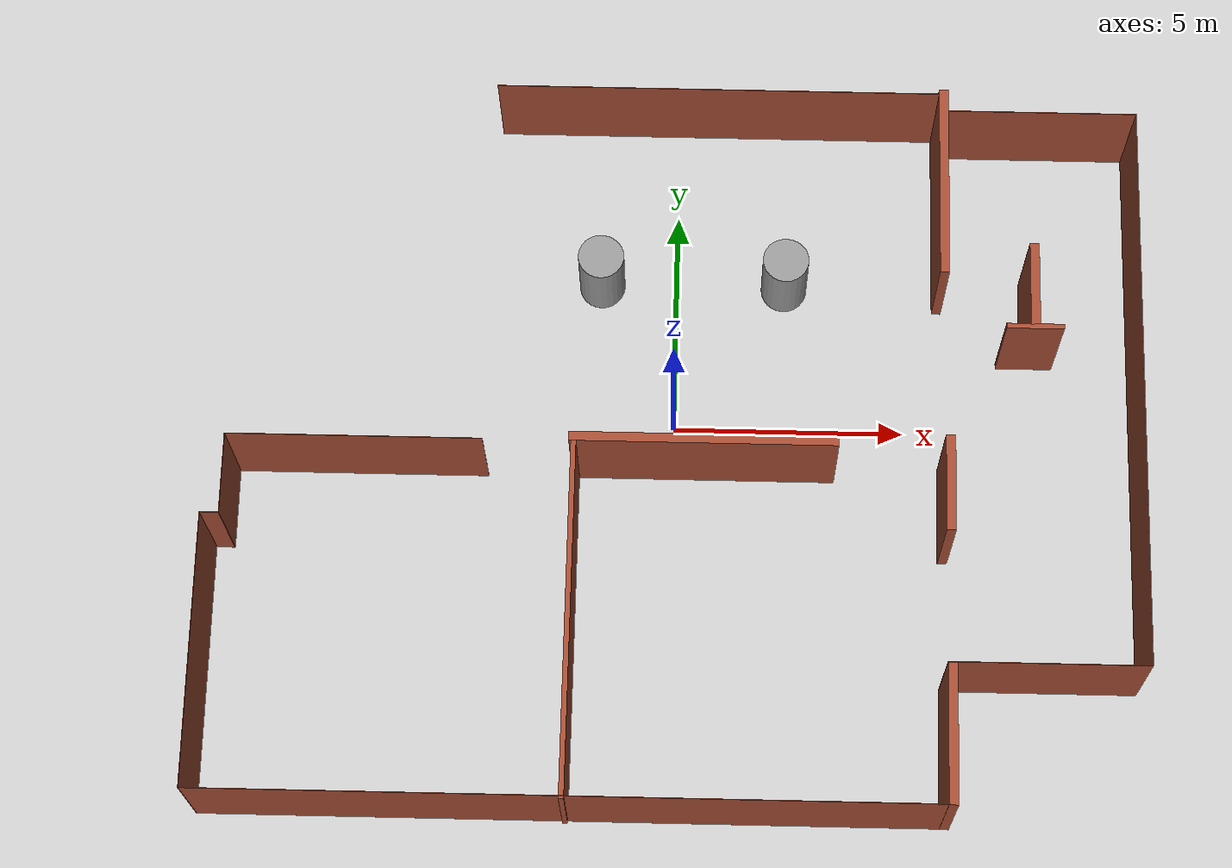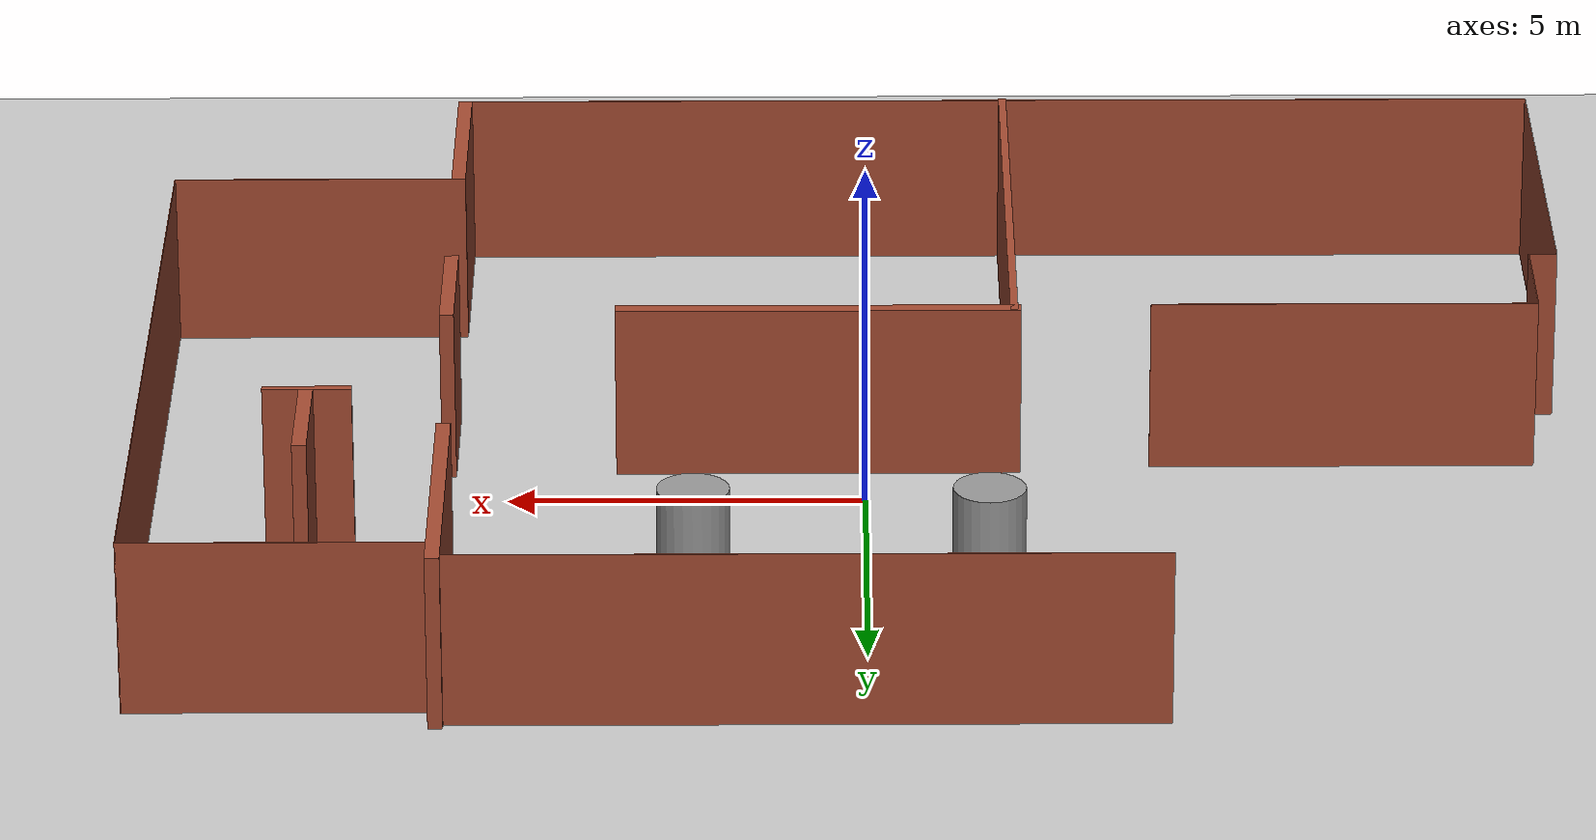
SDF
<sdf version="1.6">
 <world name="default">
  <model name="ground_plane">
   <static>1</static>
   <link name="link">
    <collision name="collision">
     <geometry><plane><normal>0 0 1</normal><size>100 100</size></plane></geometry>
     <surface><friction><ode><mu>100</mu><mu2>50</mu2></ode></friction></surface>
    </collision>
    <visual name="visual">
     <cast_shadows>0</cast_shadows>
     <geometry><plane><normal>0 0 1</normal><size>100 100</size></plane></geometry>
     <material>
      <script><uri>file://media/materials/scripts/gazebo.material</uri><name>Gazebo/Grey</name></script>
     </material>
    </visual>
   </link>
  </model>
  <model name="ANPL_Lab_Extended_0_0">
   <link name="Wall_165">
    <pose>-9.925 -4.975 0 0 -0 1.5708</pose>
    <visual name="Wall_165_Visual">
     <pose>0 0 1.25 0 -0 0</pose>
     <geometry><box><size>5.86 0.01 2.5</size></box></geometry>
     <material>
      <script><uri>file://media/materials/scripts/gazebo.material</uri><name>Gazebo/Bricks</name></script>
      <ambient>0.435294 0.796078 0.67451 1</ambient>
      <diffuse>1 1 1 1</diffuse>
      <specular>0.2 0.2 0.2 1</specular>
      <emissive>0 0 0 1</emissive>
     </material>
    </visual>
    <collision name="Wall_165_Collision">
     <pose>0 0 1.25 0 -0 0</pose>
     <geometry><box><size>5.86 0.01 2.5</size></box></geometry>
     <surface>
      <friction>
       <ode><mu>1</mu><mu2>1</mu2><fdir1>0 0 0</fdir1><slip1>0</slip1><slip2>0</slip2></ode>
       <torsional>
        <coefficient>1</coefficient>
        <patch_radius>0</patch_radius>
        <surface_radius>0</surface_radius>
        <use_patch_radius>1</use_patch_radius>
        <ode><slip>0</slip></ode>
       </torsional>
      </friction>
      <bounce><restitution_coefficient>0</restitution_coefficient><threshold>1e+06</threshold></bounce>
      <contact>
       <collide_without_contact>0</collide_without_contact>
       <collide_without_contact_bitmask>1</collide_without_contact_bitmask>
       <collide_bitmask>1</collide_bitmask>
       <ode>
        <soft_cfm>0</soft_cfm>
        <soft_erp>0.2</soft_erp>
        <kp>1e+13</kp>
        <kd>1</kd>
        <max_vel>0.01</max_vel>
        <min_depth>0</min_depth>
       </ode>
       <bullet>
        <split_impulse>1</split_impulse>
        <split_impulse_penetration_threshold>-0.01</split_impulse_penetration_threshold>
        <soft_cfm>0</soft_cfm>
        <soft_erp>0.2</soft_erp>
        <kp>1e+13</kp>
        <kd>1</kd>
       </bullet>
      </contact>
     </surface>
    </collision>
   </link>
   <link name="Wall_167">
    <pose>-9.725 -2.05 0 0 -0 0</pose>
    <visual name="Wall_167_Visual">
     <pose>0 0 1.25 0 -0 0</pose>
     <geometry><box><size>0.41 0.01 2.5</size></box></geometry>
     <material>
      <script><uri>file://media/materials/scripts/gazebo.material</uri><name>Gazebo/Bricks</name></script>
      <ambient>0.435294 0.796078 0.67451 1</ambient>
      <diffuse>1 1 1 1</diffuse>
      <specular>0.2 0.2 0.2 1</specular>
      <emissive>0 0 0 1</emissive>
     </material>
    </visual>
    <collision name="Wall_167_Collision">
     <pose>0 0 1.25 0 -0 0</pose>
     <geometry><box><size>0.41 0.01 2.5</size></box></geometry>
     <surface>
      <friction>
       <ode><mu>1</mu><mu2>1</mu2><fdir1>0 0 0</fdir1><slip1>0</slip1><slip2>0</slip2></ode>
       <torsional>
        <coefficient>1</coefficient>
        <patch_radius>0</patch_radius>
        <surface_radius>0</surface_radius>
        <use_patch_radius>1</use_patch_radius>
        <ode><slip>0</slip></ode>
       </torsional>
      </friction>
      <bounce><restitution_coefficient>0</restitution_coefficient><threshold>1e+06</threshold></bounce>
      <contact>
       <collide_without_contact>0</collide_without_contact>
       <collide_without_contact_bitmask>1</collide_without_contact_bitmask>
       <collide_bitmask>1</collide_bitmask>
       <ode>
        <soft_cfm>0</soft_cfm>
        <soft_erp>0.2</soft_erp>
        <kp>1e+13</kp>
        <kd>1</kd>
        <max_vel>0.01</max_vel>
        <min_depth>0</min_depth>
       </ode>
       <bullet>
        <split_impulse>1</split_impulse>
        <split_impulse_penetration_threshold>-0.01</split_impulse_penetration_threshold>
        <soft_cfm>0</soft_cfm>
        <soft_erp>0.2</soft_erp>
        <kp>1e+13</kp>
        <kd>1</kd>
       </bullet>
      </contact>
     </surface>
    </collision>
   </link>
   <link name="Wall_169">
    <pose>-9.525 -1.175 0 0 -0 1.5708</pose>
    <visual name="Wall_169_Visual">
     <pose>0 0 1.25 0 -0 0</pose>
     <geometry><box><size>1.76 0.01 2.5</size></box></geometry>
     <material>
      <script><uri>file://media/materials/scripts/gazebo.material</uri><name>Gazebo/Bricks</name></script>
      <ambient>0.435294 0.796078 0.67451 1</ambient>
      <diffuse>1 1 1 1</diffuse>
      <specular>0.2 0.2 0.2 1</specular>
      <emissive>0 0 0 1</emissive>
     </material>
    </visual>
    <collision name="Wall_169_Collision">
     <pose>0 0 1.25 0 -0 0</pose>
     <geometry><box><size>1.76 0.01 2.5</size></box></geometry>
     <surface>
      <friction>
       <ode><mu>1</mu><mu2>1</mu2><fdir1>0 0 0</fdir1><slip1>0</slip1><slip2>0</slip2></ode>
       <torsional>
        <coefficient>1</coefficient>
        <patch_radius>0</patch_radius>
        <surface_radius>0</surface_radius>
        <use_patch_radius>1</use_patch_radius>
        <ode><slip>0</slip></ode>
       </torsional>
      </friction>
      <bounce><restitution_coefficient>0</restitution_coefficient><threshold>1e+06</threshold></bounce>
      <contact>
       <collide_without_contact>0</collide_without_contact>
       <collide_without_contact_bitmask>1</collide_without_contact_bitmask>
       <collide_bitmask>1</collide_bitmask>
       <ode>
        <soft_cfm>0</soft_cfm>
        <soft_erp>0.2</soft_erp>
        <kp>1e+13</kp>
        <kd>1</kd>
        <max_vel>0.01</max_vel>
        <min_depth>0</min_depth>
       </ode>
       <bullet>
        <split_impulse>1</split_impulse>
        <split_impulse_penetration_threshold>-0.01</split_impulse_penetration_threshold>
        <soft_cfm>0</soft_cfm>
        <soft_erp>0.2</soft_erp>
        <kp>1e+13</kp>
        <kd>1</kd>
       </bullet>
      </contact>
     </surface>
    </collision>
   </link>
   <link name="Wall_171">
    <pose>-6.8125 -0.3 0 0 -0 0</pose>
    <visual name="Wall_171_Visual">
     <pose>0 0 1.25 0 -0 0</pose>
     <geometry><box><size>5.435 0.01 2.5</size></box></geometry>
     <material>
      <script><uri>file://media/materials/scripts/gazebo.material</uri><name>Gazebo/Bricks</name></script>
      <ambient>0.435294 0.796078 0.67451 1</ambient>
      <diffuse>1 1 1 1</diffuse>
      <specular>0.2 0.2 0.2 1</specular>
      <emissive>0 0 0 1</emissive>
     </material>
    </visual>
    <collision name="Wall_171_Collision">
     <pose>0 0 1.25 0 -0 0</pose>
     <geometry><box><size>5.435 0.01 2.5</size></box></geometry>
     <surface>
      <friction>
       <ode><mu>1</mu><mu2>1</mu2><fdir1>0 0 0</fdir1><slip1>0</slip1><slip2>0</slip2></ode>
       <torsional>
        <coefficient>1</coefficient>
        <patch_radius>0</patch_radius>
        <surface_radius>0</surface_radius>
        <use_patch_radius>1</use_patch_radius>
        <ode><slip>0</slip></ode>
       </torsional>
      </friction>
      <bounce><restitution_coefficient>0</restitution_coefficient><threshold>1e+06</threshold></bounce>
      <contact>
       <collide_without_contact>0</collide_without_contact>
       <collide_without_contact_bitmask>1</collide_without_contact_bitmask>
       <collide_bitmask>1</collide_bitmask>
       <ode>
        <soft_cfm>0</soft_cfm>
        <soft_erp>0.2</soft_erp>
        <kp>1e+13</kp>
        <kd>1</kd>
        <max_vel>0.01</max_vel>
        <min_depth>0</min_depth>
       </ode>
       <bullet>
        <split_impulse>1</split_impulse>
        <split_impulse_penetration_threshold>-0.01</split_impulse_penetration_threshold>
        <soft_cfm>0</soft_cfm>
        <soft_erp>0.2</soft_erp>
        <kp>1e+13</kp>
        <kd>1</kd>
       </bullet>
      </contact>
     </surface>
    </collision>
   </link>
   <link name="Wall_175">
    <pose>0.7875 7.9 0 0 -0 0</pose>
    <visual name="Wall_175_Visual">
     <pose>0 0 1.25 0 -0 0</pose>
     <geometry><box><size>9.785 0.01 2.5</size></box></geometry>
     <material>
      <script><uri>file://media/materials/scripts/gazebo.material</uri><name>Gazebo/Bricks</name></script>
      <ambient>0.435294 0.796078 0.67451 1</ambient>
      <diffuse>1 1 1 1</diffuse>
      <specular>0.2 0.2 0.2 1</specular>
      <emissive>0 0 0 1</emissive>
     </material>
    </visual>
    <collision name="Wall_175_Collision">
     <pose>0 0 1.25 0 -0 0</pose>
     <geometry><box><size>9.785 0.01 2.5</size></box></geometry>
     <surface>
      <friction>
       <ode><mu>1</mu><mu2>1</mu2><fdir1>0 0 0</fdir1><slip1>0</slip1><slip2>0</slip2></ode>
       <torsional>
        <coefficient>1</coefficient>
        <patch_radius>0</patch_radius>
        <surface_radius>0</surface_radius>
        <use_patch_radius>1</use_patch_radius>
        <ode><slip>0</slip></ode>
       </torsional>
      </friction>
      <bounce><restitution_coefficient>0</restitution_coefficient><threshold>1e+06</threshold></bounce>
      <contact>
       <collide_without_contact>0</collide_without_contact>
       <collide_without_contact_bitmask>1</collide_without_contact_bitmask>
       <collide_bitmask>1</collide_bitmask>
       <ode>
        <soft_cfm>0</soft_cfm>
        <soft_erp>0.2</soft_erp>
        <kp>1e+13</kp>
        <kd>1</kd>
        <max_vel>0.01</max_vel>
        <min_depth>0</min_depth>
       </ode>
       <bullet>
        <split_impulse>1</split_impulse>
        <split_impulse_penetration_threshold>-0.01</split_impulse_penetration_threshold>
        <soft_cfm>0</soft_cfm>
        <soft_erp>0.2</soft_erp>
        <kp>1e+13</kp>
        <kd>1</kd>
       </bullet>
      </contact>
     </surface>
    </collision>
   </link>
   <link name="Wall_177">
    <pose>5.675 5.85 0 0 0 -1.5708</pose>
    <visual name="Wall_177_Visual">
     <pose>0 0 1.25 0 -0 0</pose>
     <geometry><box><size>4.3 0.2 2.5</size></box></geometry>
     <material>
      <script><uri>file://media/materials/scripts/gazebo.material</uri><name>Gazebo/Bricks</name></script>
      <ambient>0.435294 0.796078 0.67451 1</ambient>
      <diffuse>1 1 1 1</diffuse>
      <specular>0.2 0.2 0.2 1</specular>
      <emissive>0 0 0 1</emissive>
     </material>
    </visual>
    <collision name="Wall_177_Collision">
     <pose>0 0 1.25 0 -0 0</pose>
     <geometry><box><size>4.3 0.2 2.5</size></box></geometry>
     <surface>
      <friction>
       <ode><mu>1</mu><mu2>1</mu2><fdir1>0 0 0</fdir1><slip1>0</slip1><slip2>0</slip2></ode>
       <torsional>
        <coefficient>1</coefficient>
        <patch_radius>0</patch_radius>
        <surface_radius>0</surface_radius>
        <use_patch_radius>1</use_patch_radius>
        <ode><slip>0</slip></ode>
       </torsional>
      </friction>
      <bounce><restitution_coefficient>0</restitution_coefficient><threshold>1e+06</threshold></bounce>
      <contact>
       <collide_without_contact>0</collide_without_contact>
       <collide_without_contact_bitmask>1</collide_without_contact_bitmask>
       <collide_bitmask>1</collide_bitmask>
       <ode>
        <soft_cfm>0</soft_cfm>
        <soft_erp>0.2</soft_erp>
        <kp>1e+13</kp>
        <kd>1</kd>
        <max_vel>0.01</max_vel>
        <min_depth>0</min_depth>
       </ode>
       <bullet>
        <split_impulse>1</split_impulse>
        <split_impulse_penetration_threshold>-0.01</split_impulse_penetration_threshold>
        <soft_cfm>0</soft_cfm>
        <soft_erp>0.2</soft_erp>
        <kp>1e+13</kp>
        <kd>1</kd>
       </bullet>
      </contact>
     </surface>
    </collision>
   </link>
   <link name="Wall_179">
    <pose>7.775 7.5 0 0 -0 0</pose>
    <visual name="Wall_179_Visual">
     <pose>0 0 1.25 0 -0 0</pose>
     <geometry><box><size>4.21 0.01 2.5</size></box></geometry>
     <material>
      <script><uri>file://media/materials/scripts/gazebo.material</uri><name>Gazebo/Bricks</name></script>
      <ambient>0.435294 0.796078 0.67451 1</ambient>
      <diffuse>1 1 1 1</diffuse>
      <specular>0.2 0.2 0.2 1</specular>
      <emissive>0 0 0 1</emissive>
     </material>
    </visual>
    <collision name="Wall_179_Collision">
     <pose>0 0 1.25 0 -0 0</pose>
     <geometry><box><size>4.21 0.01 2.5</size></box></geometry>
     <surface>
      <friction>
       <ode><mu>1</mu><mu2>1</mu2><fdir1>0 0 0</fdir1><slip1>0</slip1><slip2>0</slip2></ode>
       <torsional>
        <coefficient>1</coefficient>
        <patch_radius>0</patch_radius>
        <surface_radius>0</surface_radius>
        <use_patch_radius>1</use_patch_radius>
        <ode><slip>0</slip></ode>
       </torsional>
      </friction>
      <bounce><restitution_coefficient>0</restitution_coefficient><threshold>1e+06</threshold></bounce>
      <contact>
       <collide_without_contact>0</collide_without_contact>
       <collide_without_contact_bitmask>1</collide_without_contact_bitmask>
       <collide_bitmask>1</collide_bitmask>
       <ode>
        <soft_cfm>0</soft_cfm>
        <soft_erp>0.2</soft_erp>
        <kp>1e+13</kp>
        <kd>1</kd>
        <max_vel>0.01</max_vel>
        <min_depth>0</min_depth>
       </ode>
       <bullet>
        <split_impulse>1</split_impulse>
        <split_impulse_penetration_threshold>-0.01</split_impulse_penetration_threshold>
        <soft_cfm>0</soft_cfm>
        <soft_erp>0.2</soft_erp>
        <kp>1e+13</kp>
        <kd>1</kd>
       </bullet>
      </contact>
     </surface>
    </collision>
   </link>
   <link name="Wall_181">
    <pose>9.875 1.285 0 0 0 -1.5708</pose>
    <visual name="Wall_181_Visual">
     <pose>0 0 1.25 0 -0 0</pose>
     <geometry><box><size>12.44 0.01 2.5</size></box></geometry>
     <material>
      <script><uri>file://media/materials/scripts/gazebo.material</uri><name>Gazebo/Bricks</name></script>
      <ambient>0.435294 0.796078 0.67451 1</ambient>
      <diffuse>1 1 1 1</diffuse>
      <specular>0.2 0.2 0.2 1</specular>
      <emissive>0 0 0 1</emissive>
     </material>
    </visual>
    <collision name="Wall_181_Collision">
     <pose>0 0 1.25 0 -0 0</pose>
     <geometry><box><size>12.44 0.01 2.5</size></box></geometry>
     <surface>
      <friction>
       <ode><mu>1</mu><mu2>1</mu2><fdir1>0 0 0</fdir1><slip1>0</slip1><slip2>0</slip2></ode>
       <torsional>
        <coefficient>1</coefficient>
        <patch_radius>0</patch_radius>
        <surface_radius>0</surface_radius>
        <use_patch_radius>1</use_patch_radius>
        <ode><slip>0</slip></ode>
       </torsional>
      </friction>
      <bounce><restitution_coefficient>0</restitution_coefficient><threshold>1e+06</threshold></bounce>
      <contact>
       <collide_without_contact>0</collide_without_contact>
       <collide_without_contact_bitmask>1</collide_without_contact_bitmask>
       <collide_bitmask>1</collide_bitmask>
       <ode>
        <soft_cfm>0</soft_cfm>
        <soft_erp>0.2</soft_erp>
        <kp>1e+13</kp>
        <kd>1</kd>
        <max_vel>0.01</max_vel>
        <min_depth>0</min_depth>
       </ode>
       <bullet>
        <split_impulse>1</split_impulse>
        <split_impulse_penetration_threshold>-0.01</split_impulse_penetration_threshold>
        <soft_cfm>0</soft_cfm>
        <soft_erp>0.2</soft_erp>
        <kp>1e+13</kp>
        <kd>1</kd>
       </bullet>
      </contact>
     </surface>
    </collision>
   </link>
   <link name="Wall_183">
    <pose>7.6044 3.46126 0 0 -0 1.5708</pose>
    <inertial>
     <mass>1.43571</mass>
     <inertia><ixx>1.43571</ixx><ixy>0</ixy><ixz>0</ixz><iyy>2.19753</iyy><iyz>0</iyz><izz>2.19753</izz></inertia>
    </inertial>
    <visual name="Wall_183_Visual">
     <pose>0 0 1.25 0 -0 0</pose>
     <geometry><box><size>1.86641 0.2 2.5</size></box></geometry>
     <material>
      <script><uri>file://media/materials/scripts/gazebo.material</uri><name>Gazebo/Bricks</name></script>
      <ambient>0.435 0.796 0.675 1</ambient>
      <diffuse>1 1 1 1</diffuse>
      <specular>0.2 0.2 0.2 1</specular>
      <emissive>0 0 0 1</emissive>
      <shader type="vertex"><normal_map>__default__</normal_map></shader>
     </material>
    </visual>
    <collision name="Wall_183_Collision">
     <pose>0 0 1.25 0 -0 0</pose>
     <geometry><box><size>1.86641 0.2 2.5</size></box></geometry>
     <surface>
      <friction>
       <ode><mu>1</mu><mu2>1</mu2><fdir1>0 0 0</fdir1><slip1>0</slip1><slip2>0</slip2></ode>
       <torsional>
        <coefficient>1</coefficient>
        <patch_radius>0</patch_radius>
        <surface_radius>0</surface_radius>
        <use_patch_radius>1</use_patch_radius>
        <ode><slip>0</slip></ode>
       </torsional>
      </friction>
      <bounce><restitution_coefficient>0</restitution_coefficient><threshold>1e+06</threshold></bounce>
      <contact>
       <collide_without_contact>0</collide_without_contact>
       <collide_without_contact_bitmask>1</collide_without_contact_bitmask>
       <collide_bitmask>1</collide_bitmask>
       <ode>
        <soft_cfm>0</soft_cfm>
        <soft_erp>0.2</soft_erp>
        <kp>1e+13</kp>
        <kd>1</kd>
        <max_vel>0.01</max_vel>
        <min_depth>0</min_depth>
       </ode>
       <bullet>
        <split_impulse>1</split_impulse>
        <split_impulse_penetration_threshold>-0.01</split_impulse_penetration_threshold>
        <soft_cfm>0</soft_cfm>
        <soft_erp>0.2</soft_erp>
        <kp>1e+13</kp>
        <kd>1</kd>
       </bullet>
      </contact>
     </surface>
    </collision>
   </link>
   <link name="Wall_185">
    <pose>5.76868 -1.05 0 0 0 -1.5708</pose>
    <inertial>
     <mass>1</mass>
     <inertia><ixx>1</ixx><ixy>0</ixy><ixz>0</ixz><iyy>1</iyy><iyz>0</iyz><izz>1</izz></inertia>
    </inertial>
    <visual name="Wall_185_Visual">
     <pose>0 0 1.25 0 -0 0</pose>
     <geometry><box><size>2.1 0.2 2.5</size></box></geometry>
     <material>
      <script><uri>file://media/materials/scripts/gazebo.material</uri><name>Gazebo/Bricks</name></script>
      <ambient>0.435 0.796 0.675 1</ambient>
      <diffuse>1 1 1 1</diffuse>
      <specular>0.2 0.2 0.2 1</specular>
      <emissive>0 0 0 1</emissive>
      <shader type="vertex"><normal_map>__default__</normal_map></shader>
     </material>
    </visual>
    <collision name="Wall_185_Collision">
     <pose>0 0 1.25 0 -0 0</pose>
     <geometry><box><size>2.1 0.2 2.5</size></box></geometry>
     <surface>
      <friction>
       <ode><mu>1</mu><mu2>1</mu2><fdir1>0 0 0</fdir1><slip1>0</slip1><slip2>0</slip2></ode>
       <torsional>
        <coefficient>1</coefficient>
        <patch_radius>0</patch_radius>
        <surface_radius>0</surface_radius>
        <use_patch_radius>1</use_patch_radius>
        <ode><slip>0</slip></ode>
       </torsional>
      </friction>
      <bounce><restitution_coefficient>0</restitution_coefficient><threshold>1e+06</threshold></bounce>
      <contact>
       <collide_without_contact>0</collide_without_contact>
       <collide_without_contact_bitmask>1</collide_without_contact_bitmask>
       <collide_bitmask>1</collide_bitmask>
       <ode>
        <soft_cfm>0</soft_cfm>
        <soft_erp>0.2</soft_erp>
        <kp>1e+13</kp>
        <kd>1</kd>
        <max_vel>0.01</max_vel>
        <min_depth>0</min_depth>
       </ode>
       <bullet>
        <split_impulse>1</split_impulse>
        <split_impulse_penetration_threshold>-0.01</split_impulse_penetration_threshold>
        <soft_cfm>0</soft_cfm>
        <soft_erp>0.2</soft_erp>
        <kp>1e+13</kp>
        <kd>1</kd>
       </bullet>
      </contact>
     </surface>
    </collision>
   </link>
   <link name="Wall_187">
    <pose>7.59405 2.49 0 0 -0 0</pose>
    <inertial>
     <inertia><ixx>nan</ixx><ixy>0</ixy><ixz>0</ixz><iyy>nan</iyy><iyz>0</iyz><izz>nan</izz></inertia>
     <mass>0</mass>
    </inertial>
    <visual name="Wall_187_Visual">
     <pose>0 0 1.25 0 -0 0</pose>
     <geometry><box><size>1.23163 0.11 2.5</size></box></geometry>
     <material>
      <script><uri>file://media/materials/scripts/gazebo.material</uri><name>Gazebo/Bricks</name></script>
      <ambient>0.435294 0.796078 0.67451 1</ambient>
      <diffuse>1 1 1 1</diffuse>
      <specular>0.2 0.2 0.2 1</specular>
      <emissive>0 0 0 1</emissive>
     </material>
    </visual>
    <collision name="Wall_187_Collision">
     <pose>0 0 1.25 0 -0 0</pose>
     <geometry><box><size>1.23163 0.11 2.5</size></box></geometry>
     <surface>
      <friction>
       <ode><mu>1</mu><mu2>1</mu2><fdir1>0 0 0</fdir1><slip1>0</slip1><slip2>0</slip2></ode>
       <torsional>
        <coefficient>1</coefficient>
        <patch_radius>0</patch_radius>
        <surface_radius>0</surface_radius>
        <use_patch_radius>1</use_patch_radius>
        <ode><slip>0</slip></ode>
       </torsional>
      </friction>
      <bounce><restitution_coefficient>0</restitution_coefficient><threshold>1e+06</threshold></bounce>
      <contact>
       <collide_without_contact>0</collide_without_contact>
       <collide_without_contact_bitmask>1</collide_without_contact_bitmask>
       <collide_bitmask>1</collide_bitmask>
       <ode>
        <soft_cfm>0</soft_cfm>
        <soft_erp>0.2</soft_erp>
        <kp>1e+13</kp>
        <kd>1</kd>
        <max_vel>0.01</max_vel>
        <min_depth>0</min_depth>
       </ode>
       <bullet>
        <split_impulse>1</split_impulse>
        <split_impulse_penetration_threshold>-0.01</split_impulse_penetration_threshold>
        <soft_cfm>0</soft_cfm>
        <soft_erp>0.2</soft_erp>
        <kp>1e+13</kp>
        <kd>1</kd>
       </bullet>
      </contact>
     </surface>
    </collision>
   </link>
   <link name="Wall_201">
    <pose>7.775 -4.93 0 0 -0 3.14159</pose>
    <visual name="Wall_201_Visual">
     <pose>0 0 1.25 0 -0 0</pose>
     <geometry><box><size>4.21 0.01 2.5</size></box></geometry>
     <material>
      <script><uri>file://media/materials/scripts/gazebo.material</uri><name>Gazebo/Bricks</name></script>
      <ambient>0.435294 0.796078 0.67451 1</ambient>
      <diffuse>1 1 1 1</diffuse>
      <specular>0.2 0.2 0.2 1</specular>
      <emissive>0 0 0 1</emissive>
     </material>
    </visual>
    <collision name="Wall_201_Collision">
     <pose>0 0 1.25 0 -0 0</pose>
     <geometry><box><size>4.21 0.01 2.5</size></box></geometry>
     <surface>
      <friction>
       <ode><mu>1</mu><mu2>1</mu2><fdir1>0 0 0</fdir1><slip1>0</slip1><slip2>0</slip2></ode>
       <torsional>
        <coefficient>1</coefficient>
        <patch_radius>0</patch_radius>
        <surface_radius>0</surface_radius>
        <use_patch_radius>1</use_patch_radius>
        <ode><slip>0</slip></ode>
       </torsional>
      </friction>
      <bounce><restitution_coefficient>0</restitution_coefficient><threshold>1e+06</threshold></bounce>
      <contact>
       <collide_without_contact>0</collide_without_contact>
       <collide_without_contact_bitmask>1</collide_without_contact_bitmask>
       <collide_bitmask>1</collide_bitmask>
       <ode>
        <soft_cfm>0</soft_cfm>
        <soft_erp>0.2</soft_erp>
        <kp>1e+13</kp>
        <kd>1</kd>
        <max_vel>0.01</max_vel>
        <min_depth>0</min_depth>
       </ode>
       <bullet>
        <split_impulse>1</split_impulse>
        <split_impulse_penetration_threshold>-0.01</split_impulse_penetration_threshold>
        <soft_cfm>0</soft_cfm>
        <soft_erp>0.2</soft_erp>
        <kp>1e+13</kp>
        <kd>1</kd>
       </bullet>
      </contact>
     </surface>
    </collision>
   </link>
   <link name="Wall_203">
    <pose>5.76868 -6.42951 0 0 0 -1.5708</pose>
    <inertial>
     <inertia>
      <ixx>1.79769e+308</ixx>
      <ixy>0</ixy>
      <ixz>0</ixz>
      <iyy>1.79769e+308</iyy>
      <iyz>0</iyz>
      <izz>1.79769e+308</izz>
     </inertia>
     <mass>0</mass>
    </inertial>
    <visual name="Wall_203_Visual">
     <pose>0 0 1.25 0 -0 0</pose>
     <geometry><box><size>2.97075 0.2 2.5</size></box></geometry>
     <material>
      <script><uri>file://media/materials/scripts/gazebo.material</uri><name>Gazebo/Bricks</name></script>
      <ambient>0.435 0.796 0.675 1</ambient>
      <diffuse>1 1 1 1</diffuse>
      <specular>0.2 0.2 0.2 1</specular>
      <emissive>0 0 0 1</emissive>
      <shader type="vertex"><normal_map>__default__</normal_map></shader>
     </material>
    </visual>
    <collision name="Wall_203_Collision">
     <pose>0 0 1.25 0 -0 0</pose>
     <geometry><box><size>2.97075 0.2 2.5</size></box></geometry>
     <surface>
      <friction>
       <ode><mu>1</mu><mu2>1</mu2><fdir1>0 0 0</fdir1><slip1>0</slip1><slip2>0</slip2></ode>
       <torsional>
        <coefficient>1</coefficient>
        <patch_radius>0</patch_radius>
        <surface_radius>0</surface_radius>
        <use_patch_radius>1</use_patch_radius>
        <ode><slip>0</slip></ode>
       </torsional>
      </friction>
      <bounce><restitution_coefficient>0</restitution_coefficient><threshold>1e+06</threshold></bounce>
      <contact>
       <collide_without_contact>0</collide_without_contact>
       <collide_without_contact_bitmask>1</collide_without_contact_bitmask>
       <collide_bitmask>1</collide_bitmask>
       <ode>
        <soft_cfm>0</soft_cfm>
        <soft_erp>0.2</soft_erp>
        <kp>1e+13</kp>
        <kd>1</kd>
        <max_vel>0.01</max_vel>
        <min_depth>0</min_depth>
       </ode>
       <bullet>
        <split_impulse>1</split_impulse>
        <split_impulse_penetration_threshold>-0.01</split_impulse_penetration_threshold>
        <soft_cfm>0</soft_cfm>
        <soft_erp>0.2</soft_erp>
        <kp>1e+13</kp>
        <kd>1</kd>
       </bullet>
      </contact>
     </surface>
    </collision>
   </link>
   <link name="Wall_205">
    <pose>-2.125 -7.9 0 0 -0 3.14159</pose>
    <visual name="Wall_205_Visual">
     <pose>0 0 1.25 0 -0 0</pose>
     <geometry><box><size>15.61 0.01 2.5</size></box></geometry>
     <material>
      <script><uri>file://media/materials/scripts/gazebo.material</uri><name>Gazebo/Bricks</name></script>
      <ambient>0.435294 0.796078 0.67451 1</ambient>
      <diffuse>1 1 1 1</diffuse>
      <specular>0.2 0.2 0.2 1</specular>
      <emissive>0 0 0 1</emissive>
     </material>
    </visual>
    <collision name="Wall_205_Collision">
     <pose>0 0 1.25 0 -0 0</pose>
     <geometry><box><size>15.61 0.01 2.5</size></box></geometry>
     <surface>
      <friction>
       <ode><mu>1</mu><mu2>1</mu2><fdir1>0 0 0</fdir1><slip1>0</slip1><slip2>0</slip2></ode>
       <torsional>
        <coefficient>1</coefficient>
        <patch_radius>0</patch_radius>
        <surface_radius>0</surface_radius>
        <use_patch_radius>1</use_patch_radius>
        <ode><slip>0</slip></ode>
       </torsional>
      </friction>
      <bounce><restitution_coefficient>0</restitution_coefficient><threshold>1e+06</threshold></bounce>
      <contact>
       <collide_without_contact>0</collide_without_contact>
       <collide_without_contact_bitmask>1</collide_without_contact_bitmask>
       <collide_bitmask>1</collide_bitmask>
       <ode>
        <soft_cfm>0</soft_cfm>
        <soft_erp>0.2</soft_erp>
        <kp>1e+13</kp>
        <kd>1</kd>
        <max_vel>0.01</max_vel>
        <min_depth>0</min_depth>
       </ode>
       <bullet>
        <split_impulse>1</split_impulse>
        <split_impulse_penetration_threshold>-0.01</split_impulse_penetration_threshold>
        <soft_cfm>0</soft_cfm>
        <soft_erp>0.2</soft_erp>
        <kp>1e+13</kp>
        <kd>1</kd>
       </bullet>
      </contact>
     </surface>
    </collision>
   </link>
   <link name="Wall_207">
    <pose>-2.175 -4.05 0 0 -0 1.5708</pose>
    <visual name="Wall_207_Visual">
     <pose>0 0 1.25 0 -0 0</pose>
     <geometry><box><size>7.81 0.11 2.5</size></box></geometry>
     <material>
      <script><uri>file://media/materials/scripts/gazebo.material</uri><name>Gazebo/Bricks</name></script>
      <ambient>0.435294 0.796078 0.67451 1</ambient>
      <diffuse>1 1 1 1</diffuse>
      <specular>0.2 0.2 0.2 1</specular>
      <emissive>0 0 0 1</emissive>
     </material>
    </visual>
    <collision name="Wall_207_Collision">
     <pose>0 0 1.25 0 -0 0</pose>
     <geometry><box><size>7.81 0.11 2.5</size></box></geometry>
     <surface>
      <friction>
       <ode><mu>1</mu><mu2>1</mu2><fdir1>0 0 0</fdir1><slip1>0</slip1><slip2>0</slip2></ode>
       <torsional>
        <coefficient>1</coefficient>
        <patch_radius>0</patch_radius>
        <surface_radius>0</surface_radius>
        <use_patch_radius>1</use_patch_radius>
        <ode><slip>0</slip></ode>
       </torsional>
      </friction>
      <bounce><restitution_coefficient>0</restitution_coefficient><threshold>1e+06</threshold></bounce>
      <contact>
       <collide_without_contact>0</collide_without_contact>
       <collide_without_contact_bitmask>1</collide_without_contact_bitmask>
       <collide_bitmask>1</collide_bitmask>
       <ode>
        <soft_cfm>0</soft_cfm>
        <soft_erp>0.2</soft_erp>
        <kp>1e+13</kp>
        <kd>1</kd>
        <max_vel>0.01</max_vel>
        <min_depth>0</min_depth>
       </ode>
       <bullet>
        <split_impulse>1</split_impulse>
        <split_impulse_penetration_threshold>-0.01</split_impulse_penetration_threshold>
        <soft_cfm>0</soft_cfm>
        <soft_erp>0.2</soft_erp>
        <kp>1e+13</kp>
        <kd>1</kd>
       </bullet>
      </contact>
     </surface>
    </collision>
   </link>
   <link name="Wall_209">
    <pose>0.571 -0.2 0 0 -0 0</pose>
    <inertial>
     <mass>1</mass>
     <inertia><ixx>1</ixx><ixy>0</ixy><ixz>0</ixz><iyy>1</iyy><iyz>0</iyz><izz>1</izz></inertia>
    </inertial>
    <visual name="Wall_209_Visual">
     <pose>0 0 1.25 0 -0 0</pose>
     <geometry><box><size>5.692 0.2 2.5</size></box></geometry>
     <material>
      <script><uri>file://media/materials/scripts/gazebo.material</uri><name>Gazebo/Bricks</name></script>
      <ambient>0.435 0.796 0.675 1</ambient>
      <diffuse>1 1 1 1</diffuse>
      <specular>0.2 0.2 0.2 1</specular>
      <emissive>0 0 0 1</emissive>
      <shader type="vertex"><normal_map>__default__</normal_map></shader>
     </material>
    </visual>
    <collision name="Wall_209_Collision">
     <pose>0 0 1.25 0 -0 0</pose>
     <geometry><box><size>5.692 0.2 2.5</size></box></geometry>
     <surface>
      <friction>
       <ode><mu>1</mu><mu2>1</mu2><fdir1>0 0 0</fdir1><slip1>0</slip1><slip2>0</slip2></ode>
       <torsional>
        <coefficient>1</coefficient>
        <patch_radius>0</patch_radius>
        <surface_radius>0</surface_radius>
        <use_patch_radius>1</use_patch_radius>
        <ode><slip>0</slip></ode>
       </torsional>
      </friction>
      <bounce><restitution_coefficient>0</restitution_coefficient><threshold>1e+06</threshold></bounce>
      <contact>
       <collide_without_contact>0</collide_without_contact>
       <collide_without_contact_bitmask>1</collide_without_contact_bitmask>
       <collide_bitmask>1</collide_bitmask>
       <ode>
        <soft_cfm>0</soft_cfm>
        <soft_erp>0.2</soft_erp>
        <kp>1e+13</kp>
        <kd>1</kd>
        <max_vel>0.01</max_vel>
        <min_depth>0</min_depth>
       </ode>
       <bullet>
        <split_impulse>1</split_impulse>
        <split_impulse_penetration_threshold>-0.01</split_impulse_penetration_threshold>
        <soft_cfm>0</soft_cfm>
        <soft_erp>0.2</soft_erp>
        <kp>1e+13</kp>
        <kd>1</kd>
       </bullet>
      </contact>
     </surface>
    </collision>
   </link>
   <link name="link_0">
    <pose>2.28416 4.2 0.5 0 -0 0</pose>
    <inertial>
     <mass>1</mass>
     <inertia><ixx>0.145833</ixx><ixy>0</ixy><ixz>0</ixz><iyy>0.145833</iyy><iyz>0</iyz><izz>0.125</izz></inertia>
    </inertial>
    <visual name="visual">
     <geometry><cylinder><radius>0.5</radius><length>2.5</length></cylinder></geometry>
     <material>
      <lighting>1</lighting>
      <script><uri>file://media/materials/scripts/gazebo.material</uri><name>Gazebo/Grey</name></script>
      <ambient>0.3 0.3 0.3 1</ambient>
      <diffuse>0.7 0.7 0.7 1</diffuse>
      <specular>0.01 0.01 0.01 1</specular>
      <emissive>0 0 0 1</emissive>
      <shader type="vertex"><normal_map>__default__</normal_map></shader>
     </material>
    </visual>
    <collision name="collision">
     <geometry><cylinder><radius>0.5</radius><length>2.5</length></cylinder></geometry>
     <surface>
      <friction>
       <ode><mu>1</mu><mu2>1</mu2><fdir1>0 0 0</fdir1><slip1>0</slip1><slip2>0</slip2></ode>
       <torsional>
        <coefficient>1</coefficient>
        <patch_radius>0</patch_radius>
        <surface_radius>0</surface_radius>
        <use_patch_radius>1</use_patch_radius>
        <ode><slip>0</slip></ode>
       </torsional>
      </friction>
      <bounce><restitution_coefficient>0</restitution_coefficient><threshold>1e+06</threshold></bounce>
      <contact>
       <collide_without_contact>0</collide_without_contact>
       <collide_without_contact_bitmask>1</collide_without_contact_bitmask>
       <collide_bitmask>1</collide_bitmask>
       <ode>
        <soft_cfm>0</soft_cfm>
        <soft_erp>0.2</soft_erp>
        <kp>1e+13</kp>
        <kd>1</kd>
        <max_vel>0.01</max_vel>
        <min_depth>0</min_depth>
       </ode>
       <bullet>
        <split_impulse>1</split_impulse>
        <split_impulse_penetration_threshold>-0.01</split_impulse_penetration_threshold>
        <soft_cfm>0</soft_cfm>
        <soft_erp>0.2</soft_erp>
        <kp>1e+13</kp>
        <kd>1</kd>
       </bullet>
      </contact>
     </surface>
    </collision>
   </link>
   <link name="link_1">
    <pose>-1.74778 4.2 0.5 0 -0 0</pose>
    <inertial>
     <mass>1</mass>
     <inertia><ixx>0.145833</ixx><ixy>0</ixy><ixz>0</ixz><iyy>0.145833</iyy><iyz>0</iyz><izz>0.125</izz></inertia>
    </inertial>
    <visual name="visual">
     <geometry><cylinder><radius>0.5</radius><length>2.5</length></cylinder></geometry>
     <material>
      <lighting>1</lighting>
      <script><uri>file://media/materials/scripts/gazebo.material</uri><name>Gazebo/Grey</name></script>
      <ambient>0.3 0.3 0.3 1</ambient>
      <diffuse>0.7 0.7 0.7 1</diffuse>
      <specular>0.01 0.01 0.01 1</specular>
      <emissive>0 0 0 1</emissive>
      <shader type="vertex"><normal_map>__default__</normal_map></shader>
     </material>
    </visual>
    <collision name="collision">
     <geometry><cylinder><radius>0.5</radius><length>2.5</length></cylinder></geometry>
     <surface>
      <friction>
       <ode><mu>1</mu><mu2>1</mu2><fdir1>0 0 0</fdir1><slip1>0</slip1><slip2>0</slip2></ode>
       <torsional>
        <coefficient>1</coefficient>
        <patch_radius>0</patch_radius>
        <surface_radius>0</surface_radius>
        <use_patch_radius>1</use_patch_radius>
        <ode><slip>0</slip></ode>
       </torsional>
      </friction>
      <bounce><restitution_coefficient>0</restitution_coefficient><threshold>1e+06</threshold></bounce>
      <contact>
       <collide_without_contact>0</collide_without_contact>
       <collide_without_contact_bitmask>1</collide_without_contact_bitmask>
       <collide_bitmask>1</collide_bitmask>
       <ode>
        <soft_cfm>0</soft_cfm>
        <soft_erp>0.2</soft_erp>
        <kp>1e+13</kp>
        <kd>1</kd>
        <max_vel>0.01</max_vel>
        <min_depth>0</min_depth>
       </ode>
       <bullet>
        <split_impulse>1</split_impulse>
        <split_impulse_penetration_threshold>-0.01</split_impulse_penetration_threshold>
        <soft_cfm>0</soft_cfm>
        <soft_erp>0.2</soft_erp>
        <kp>1e+13</kp>
        <kd>1</kd>
       </bullet>
      </contact>
     </surface>
    </collision>
   </link>
   <static>1</static>
   <pose>0.079097 -0.839942 0 0 -0 0</pose>
  </model>
 </world>
</sdf>
